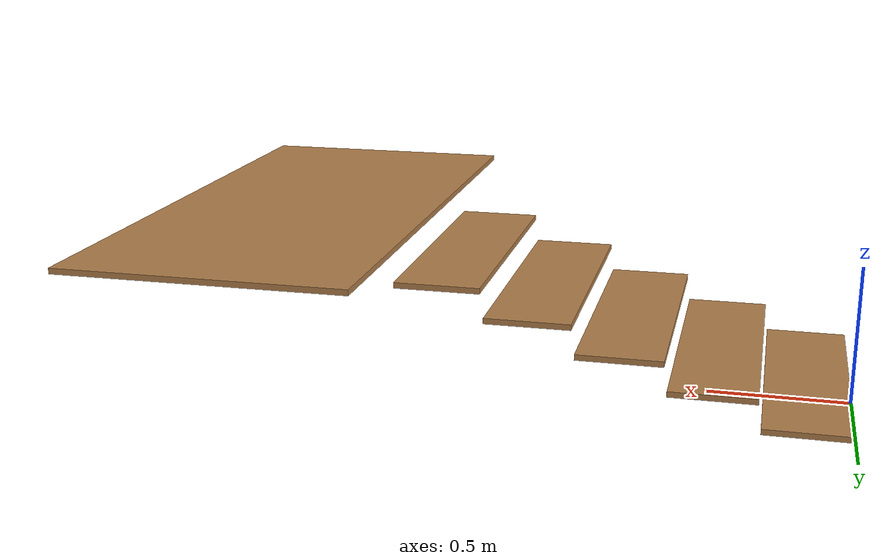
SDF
<sdf version='1.3'>
  <model name='bauzil_stairs'>
    <static>1</static>
    <link name='step_1'>
      <static>true</static>
      <collision name="step_1">
      	<pose>2.00999999046 -0.0599956810474 0.589999964237 0.0 -0.0 0.0</pose>
        <geometry>
          <box>
            <size>0.982111455754 1.96422285297 0.02</size>
          </box>
        </geometry>
      </collision>
      <visual name="step_1">
      	<pose>2.00999999046 -0.0599956810474 0.589999964237 0.0 -0.0 0.0</pose>
        <geometry>
          <box>
            <size>0.982111455754 1.96422285297 0.02</size>
          </box>
        </geometry>
        <material>
          <script>
            <uri>file://media/materials/scripts/gazebo.material</uri>
            <name>Gazebo/Wood</name>
          </script>
        </material>
      </visual>
    </link>
    <link name='step_2'>
      <static>true</static>
      <collision name="step_2">
      	<pose>1.36000001431 0.0400044322014 0.489999970198 0.0 -0.0 0.0</pose>
        <geometry>
          <box>
            <size>0.28850603857 0.961686948088 0.02</size>
          </box>
        </geometry>
      </collision>
      <visual name="step_2">
      	<pose>1.36000001431 0.0400044322014 0.489999970198 0.0 -0.0 0.0</pose>
        <geometry>
          <box>
            <size>0.28850603857 0.961686948088 0.02</size>
          </box>
        </geometry>
        <material>
          <script>
            <uri>file://media/materials/scripts/gazebo.material</uri>
            <name>Gazebo/Wood</name>
          </script>
        </material>
      </visual>
    </link>
    <link name='step_3'>
      <static>true</static>
      <collision name="step_3">
      	<pose>1.06000000238 0.0400044322014 0.389999976158 0.0 -0.0 0.0</pose>
        <geometry>
          <box>
            <size>0.288506153589 0.961686949345 0.02</size>
          </box>
        </geometry>
      </collision>
      <visual name="step_3">
      	<pose>1.06000000238 0.0400044322014 0.389999976158 0.0 -0.0 0.0</pose>
        <geometry>
          <box>
            <size>0.288506153589 0.961686949345 0.02</size>
          </box>
        </geometry>
        <material>
          <script>
            <uri>file://media/materials/scripts/gazebo.material</uri>
            <name>Gazebo/Wood</name>
          </script>
        </material>
      </visual>
    </link>
    <link name='step_4'>
      <static>true</static>
      <collision name="step_4">
      	<pose>0.76000007987 0.0400044322014 0.289999982119 0.0 -0.0 0.0</pose>
        <geometry>
          <box>
            <size>0.288506153589 0.961686949345 0.02</size>
          </box>
        </geometry>
      </collision>
      <visual name="step_4">
      	<pose>0.76000007987 0.0400044322014 0.289999982119 0.0 -0.0 0.0</pose>
        <geometry>
          <box>
            <size>0.288506153589 0.961686949345 0.02</size>
          </box>
        </geometry>
        <material>
          <script>
            <uri>file://media/materials/scripts/gazebo.material</uri>
            <name>Gazebo/Wood</name>
          </script>
        </material>
      </visual>
    </link>
    <link name='step_5'>
      <static>true</static>
      <collision name="step_5">
      	<pose>0.460000008345 0.0400044322014 0.189999988079 0.0 -0.0 0.0</pose>
        <geometry>
          <box>
            <size>0.288506153589 0.961686949345 0.02</size>
          </box>
        </geometry>
      </collision>
      <visual name="step_5">
      	<pose>0.460000008345 0.0400044322014 0.189999988079 0.0 -0.0 0.0</pose>
        <geometry>
          <box>
            <size>0.288506153589 0.961686949345 0.02</size>
          </box>
        </geometry>
        <material>
          <script>
            <uri>file://media/materials/scripts/gazebo.material</uri>
            <name>Gazebo/Wood</name>
          </script>
        </material>
      </visual>
    </link>
    <link name='step_6'>
      <static>true</static>
      <collision name="step_6">
      	<pose>0.160000003874 0.0400044322014 0.0899999791384 0.0 -0.0 0.0</pose>
        <geometry>
          <box>
            <size>0.288506153589 0.961686949345 0.02</size>
          </box>
        </geometry>
      </collision>
      <visual name="step_6">
      	<pose>0.160000003874 0.0400044322014 0.0899999791384 0.0 -0.0 0.0</pose>
        <geometry>
          <box>
            <size>0.288506153589 0.961686949345 0.02</size>
          </box>
        </geometry>
        <material>
          <script>
            <uri>file://media/materials/scripts/gazebo.material</uri>
            <name>Gazebo/Wood</name>
          </script>
        </material>
      </visual>
    </link>
  </model>
</sdf>
